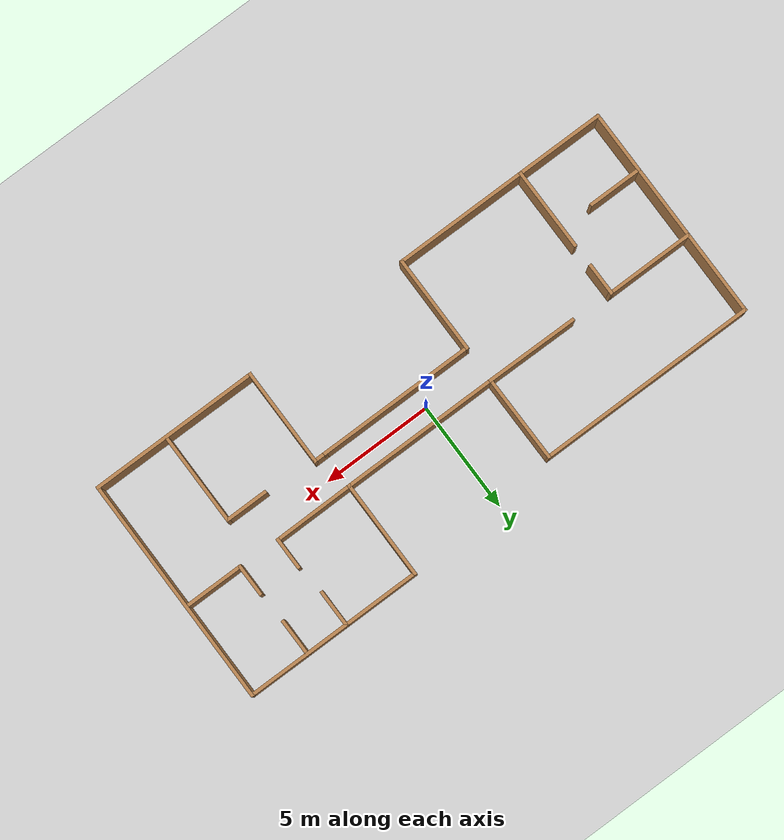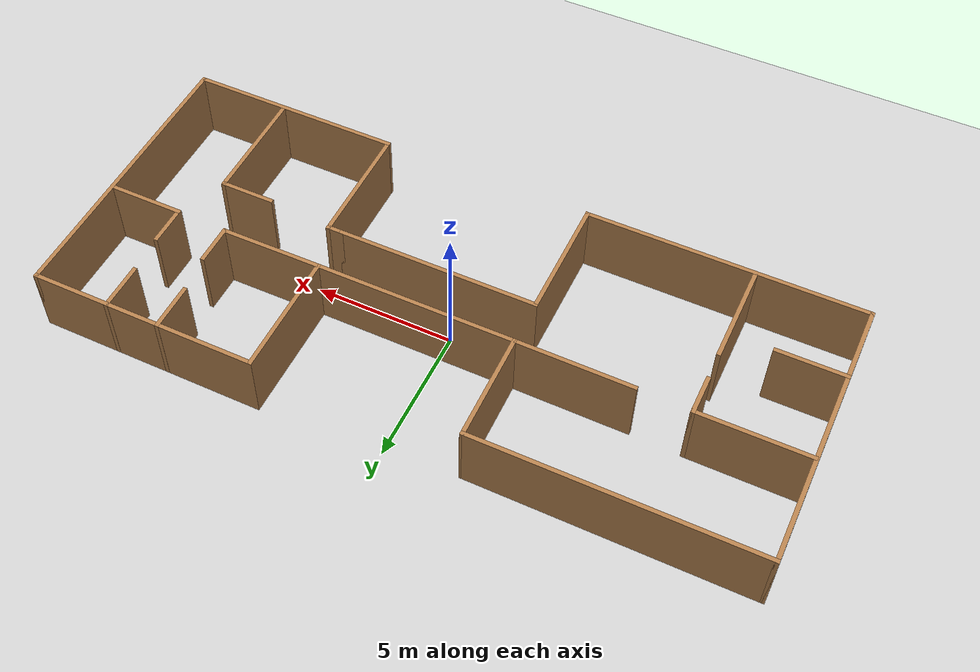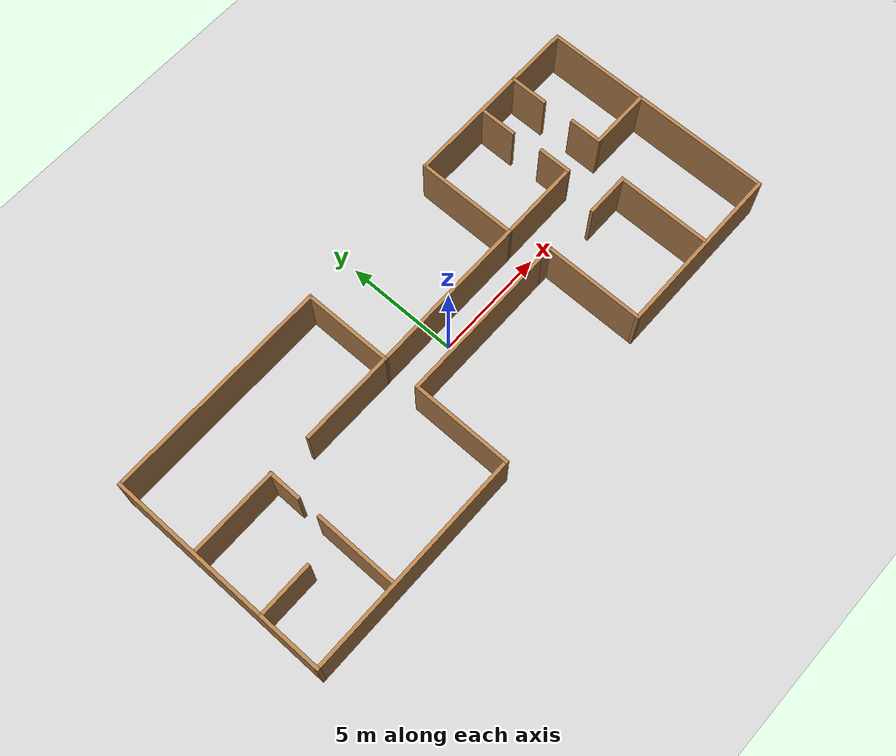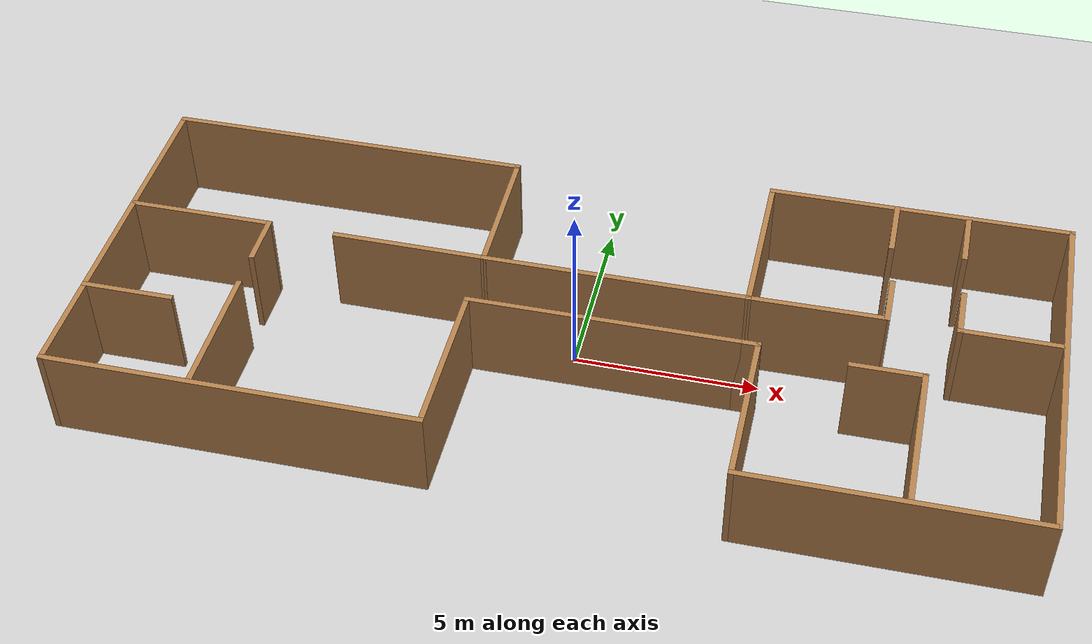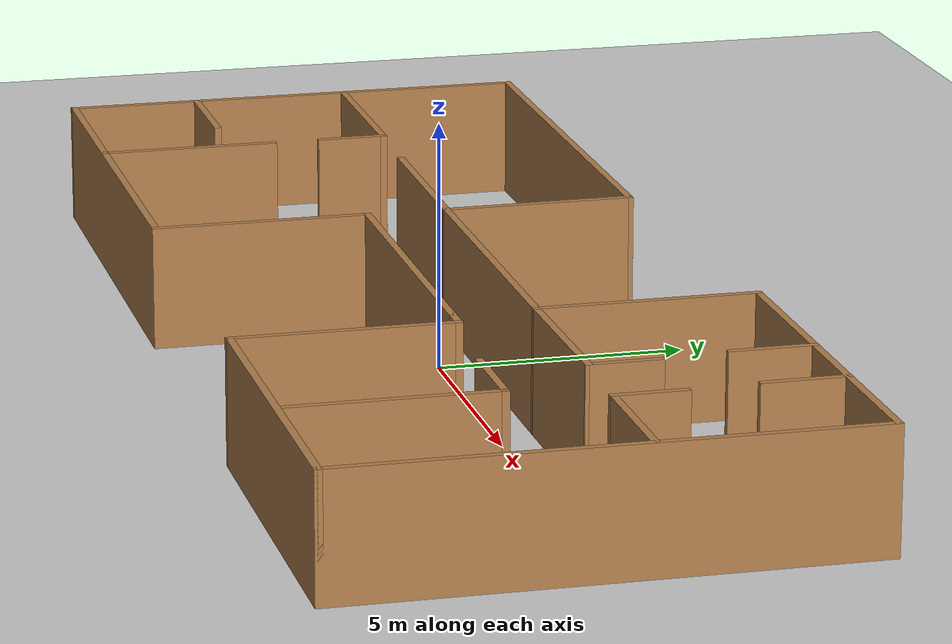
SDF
<sdf version="1.7">
 <world name="default">
  <light name="sun" type="directional">
   <pose>0 0 10 0 -0 0</pose>
   <diffuse>0.8 0.8 0.8 1</diffuse>
   <specular>0.2 0.2 0.2 1</specular>
   <attenuation>
    <range>1000</range>
    <constant>0.9</constant>
    <linear>0.01</linear>
    <quadratic>0.001</quadratic>
   </attenuation>
   <direction>-0.5 0.1 -0.9</direction>
   <spot><inner_angle>0</inner_angle><outer_angle>0</outer_angle><falloff>0</falloff></spot>
  </light>
  <model name="ground_plane">
   <static>1</static>
   <link name="link">
    <collision name="collision">
     <geometry><plane><normal>0 0 1</normal><size>100 100</size></plane></geometry>
     <surface>
      <contact><collide_bitmask>65535</collide_bitmask></contact>
      <friction><ode><mu>100</mu><mu2>50</mu2></ode></friction>
     </surface>
    </collision>
    <visual name="visual">
     <cast_shadows>0</cast_shadows>
     <geometry><plane><normal>0 0 1</normal><size>100 100</size></plane></geometry>
     <material>
      <script><uri>file://media/materials/scripts/gazebo.material</uri><name>Gazebo/Grey</name></script>
     </material>
    </visual>
   </link>
  </model>
  <gravity>0 0 -9.8</gravity>
  <magnetic_field>6e-06 2.3e-05 -4.2e-05</magnetic_field>
  <atmosphere type="adiabatic"/>
  <physics type="ode">
   <max_step_size>0.001</max_step_size>
   <real_time_factor>1</real_time_factor>
   <real_time_update_rate>1000</real_time_update_rate>
  </physics>
  <scene><ambient>0.4 0.4 0.4 1</ambient><background>0.7 0.7 0.7 1</background><shadows>1</shadows></scene>
  <spherical_coordinates>
   <surface_model>EARTH_WGS84</surface_model>
   <latitude_deg>0</latitude_deg>
   <longitude_deg>0</longitude_deg>
   <elevation>0</elevation>
   <heading_deg>0</heading_deg>
  </spherical_coordinates>
  <model name="turtlebot3_project_house">
   <link name="Wall_0">
    <collision name="Wall_0_Collision">
     <geometry><box><size>10.023 0.15 2.5</size></box></geometry>
     <pose>0 0 1.25 0 -0 0</pose>
    </collision>
    <visual name="Wall_0_Visual">
     <pose>0 0 1.25 0 -0 0</pose>
     <geometry><box><size>10.023 0.15 2.5</size></box></geometry>
     <material>
      <script><uri>file://media/materials/scripts/gazebo.material</uri><name>Gazebo/Wood</name></script>
      <ambient>1 1 1 1</ambient>
     </material>
     <meta><layer>0</layer></meta>
    </visual>
    <pose>-7.59992 -5.176 0 0 -0 3.14159</pose>
   </link>
   <link name="Wall_10">
    <collision name="Wall_10_Collision">
     <geometry><box><size>7.22732 0.15 2.5</size></box></geometry>
     <pose>0 0 1.25 0 -0 0</pose>
    </collision>
    <visual name="Wall_10_Visual">
     <pose>0 0 1.25 0 -0 0</pose>
     <geometry><box><size>7.22732 0.15 2.5</size></box></geometry>
     <material>
      <script><uri>file://media/materials/scripts/gazebo.material</uri><name>Gazebo/Wood</name></script>
      <ambient>1 1 1 1</ambient>
     </material>
     <meta><layer>0</layer></meta>
    </visual>
    <pose>0.89808 0.801 0 0 -0 0</pose>
   </link>
   <link name="Wall_11">
    <collision name="Wall_11_Collision">
     <geometry><box><size>4.52293 0.15 2.5</size></box></geometry>
     <pose>0 0 1.25 0 -0 0</pose>
    </collision>
    <visual name="Wall_11_Visual">
     <pose>0 0 1.25 0 -0 0</pose>
     <geometry><box><size>4.52293 0.15 2.5</size></box></geometry>
     <material>
      <script><uri>file://media/materials/scripts/gazebo.material</uri><name>Gazebo/Wood</name></script>
      <ambient>1 1 1 1</ambient>
     </material>
     <meta><layer>0</layer></meta>
    </visual>
    <pose>4.43658 2.9875 0 0 -0 1.5708</pose>
   </link>
   <link name="Wall_12">
    <collision name="Wall_12_Collision">
     <geometry><box><size>8.25 0.15 2.5</size></box></geometry>
     <pose>0 0 1.25 0 -0 0</pose>
    </collision>
    <visual name="Wall_12_Visual">
     <pose>0 0 1.25 0 -0 0</pose>
     <geometry><box><size>8.25 0.15 2.5</size></box></geometry>
     <material>
      <script><uri>file://media/materials/scripts/gazebo.material</uri><name>Gazebo/Wood</name></script>
      <ambient>1 1 1 1</ambient>
     </material>
     <meta><layer>0</layer></meta>
    </visual>
    <pose>8.48658 5.174 0 0 -0 0</pose>
   </link>
   <link name="Wall_13">
    <collision name="Wall_13_Collision">
     <geometry><box><size>10.5 0.15 2.5</size></box></geometry>
     <pose>0 0 1.25 0 -0 0</pose>
    </collision>
    <visual name="Wall_13_Visual">
     <pose>0 0 1.25 0 -0 0</pose>
     <geometry><box><size>10.5 0.15 2.5</size></box></geometry>
     <material>
      <script><uri>file://media/materials/scripts/gazebo.material</uri><name>Gazebo/Wood</name></script>
      <ambient>1 1 1 1</ambient>
     </material>
     <meta><layer>0</layer></meta>
    </visual>
    <pose>12.5366 -0.001 0 0 -0 -1.5708</pose>
   </link>
   <link name="Wall_14">
    <collision name="Wall_14_Collision">
     <geometry><box><size>7.75 0.15 2.5</size></box></geometry>
     <pose>0 0 1.25 0 -0 0</pose>
    </collision>
    <visual name="Wall_14_Visual">
     <pose>0 0 1.25 0 -0 0</pose>
     <geometry><box><size>7.75 0.15 2.5</size></box></geometry>
     <material>
      <script><uri>file://media/materials/scripts/gazebo.material</uri><name>Gazebo/Wood</name></script>
      <ambient>1 1 1 1</ambient>
     </material>
     <meta><layer>0</layer></meta>
    </visual>
    <pose>8.73658 -5.176 0 0 -0 3.14159</pose>
   </link>
   <link name="Wall_15">
    <collision name="Wall_15_Collision">
     <geometry><box><size>4.5 0.15 2.5</size></box></geometry>
     <pose>0 0 1.25 0 -0 0</pose>
    </collision>
    <visual name="Wall_15_Visual">
     <pose>0 0 1.25 0 -0 0</pose>
     <geometry><box><size>4.5 0.15 2.5</size></box></geometry>
     <material>
      <script><uri>file://media/materials/scripts/gazebo.material</uri><name>Gazebo/Wood</name></script>
      <ambient>1 1 1 1</ambient>
     </material>
     <meta><layer>0</layer></meta>
    </visual>
    <pose>4.93658 -3.001 0 0 -0 1.5708</pose>
   </link>
   <link name="Wall_16">
    <collision name="Wall_16_Collision">
     <geometry><box><size>0.65 0.15 2.5</size></box></geometry>
     <pose>0 0 1.25 0 -0 0</pose>
    </collision>
    <visual name="Wall_16_Visual">
     <pose>0 0 1.25 0 -0 0</pose>
     <geometry><box><size>0.65 0.15 2.5</size></box></geometry>
     <material>
      <script><uri>file://media/materials/scripts/gazebo.material</uri><name>Gazebo/Wood</name></script>
      <ambient>1 1 1 1</ambient>
     </material>
     <meta><layer>0</layer></meta>
    </visual>
    <pose>4.68658 -0.826 0 0 -0 3.14159</pose>
   </link>
   <link name="Wall_18">
    <collision name="Wall_18_Collision">
     <geometry><box><size>4.25 0.15 2.5</size></box></geometry>
     <pose>0 0 1.25 0 -0 0</pose>
    </collision>
    <visual name="Wall_18_Visual">
     <pose>0 0 1.25 0 -0 0</pose>
     <geometry><box><size>4.25 0.15 2.5</size></box></geometry>
     <material>
      <script><uri>file://media/materials/scripts/gazebo.material</uri><name>Gazebo/Wood</name></script>
      <ambient>1 1 1 1</ambient>
     </material>
     <meta><layer>0</layer></meta>
    </visual>
    <pose>-4.69042 0.8125 0 0 -0 3.13598</pose>
   </link>
   <link name="Wall_2">
    <collision name="Wall_2_Collision">
     <geometry><box><size>9.977 0.15 2.5</size></box></geometry>
     <pose>0 0 1.25 0 -0 0</pose>
    </collision>
    <visual name="Wall_2_Visual">
     <pose>0 0 1.25 0 -0 0</pose>
     <geometry><box><size>9.977 0.15 2.5</size></box></geometry>
     <material>
      <script><uri>file://media/materials/scripts/gazebo.material</uri><name>Gazebo/Wood</name></script>
      <ambient>1 1 1 1</ambient>
     </material>
     <meta><layer>0</layer></meta>
    </visual>
    <pose>-12.5364 -0.2625 0 0 -0 1.5708</pose>
   </link>
   <link name="Wall_20">
    <collision name="Wall_20_Collision">
     <geometry><box><size>4 0.15 2.5</size></box></geometry>
     <pose>0 0 1.25 0 -0 0</pose>
    </collision>
    <visual name="Wall_20_Visual">
     <pose>0 0 1.25 0 -0 0</pose>
     <geometry><box><size>4 0.15 2.5</size></box></geometry>
     <material>
      <script><uri>file://media/materials/scripts/gazebo.material</uri><name>Gazebo/Wood</name></script>
      <ambient>1 1 1 1</ambient>
     </material>
     <meta><layer>0</layer></meta>
    </visual>
    <pose>-10.5694 0.872 0 0 -0 0</pose>
   </link>
   <link name="Wall_21">
    <collision name="Wall_21_Collision">
     <geometry><box><size>1.5 0.15 2.5</size></box></geometry>
     <pose>0 0 1.25 0 -0 0</pose>
    </collision>
    <visual name="Wall_21_Visual">
     <pose>0 0 1.25 0 -0 0</pose>
     <geometry><box><size>1.5 0.15 2.5</size></box></geometry>
     <material>
      <script><uri>file://media/materials/scripts/gazebo.material</uri><name>Gazebo/Wood</name></script>
      <ambient>1 1 1 1</ambient>
     </material>
     <meta><layer>0</layer></meta>
    </visual>
    <pose>-8.64442 0.197 0 0 -0 -1.5708</pose>
   </link>
   <link name="Wall_23">
    <collision name="Wall_23_Collision">
     <geometry><box><size>3.75 0.15 2.5</size></box></geometry>
     <pose>0 0 1.25 0 -0 0</pose>
    </collision>
    <visual name="Wall_23_Visual">
     <pose>0 0 1.25 0 -0 0</pose>
     <geometry><box><size>3.75 0.15 2.5</size></box></geometry>
     <material>
      <script><uri>file://media/materials/scripts/gazebo.material</uri><name>Gazebo/Wood</name></script>
      <ambient>1 1 1 1</ambient>
     </material>
     <meta><layer>0</layer></meta>
    </visual>
    <pose>-8.63242 -3.342 0 0 -0 -1.5708</pose>
   </link>
   <link name="Wall_25">
    <collision name="Wall_25_Collision">
     <geometry><box><size>2.5 0.15 2.5</size></box></geometry>
     <pose>0 0 1.25 0 -0 0</pose>
    </collision>
    <visual name="Wall_25_Visual">
     <pose>0 0 1.25 0 -0 0</pose>
     <geometry><box><size>2.5 0.15 2.5</size></box></geometry>
     <material>
      <script><uri>file://media/materials/scripts/gazebo.material</uri><name>Gazebo/Wood</name></script>
      <ambient>1 1 1 1</ambient>
     </material>
     <meta><layer>0</layer></meta>
    </visual>
    <pose>-11.3594 -2.447 0 0 -0 0</pose>
   </link>
   <link name="Wall_27">
    <collision name="Wall_27_Collision">
     <geometry><box><size>3.72707 0.15 2.5</size></box></geometry>
     <pose>0 0 1.25 0 -0 0</pose>
    </collision>
    <visual name="Wall_27_Visual">
     <pose>0 0 1.25 0 -0 0</pose>
     <geometry><box><size>3.72707 0.15 2.5</size></box></geometry>
     <material>
      <script><uri>file://media/materials/scripts/gazebo.material</uri><name>Gazebo/Wood</name></script>
      <ambient>1 1 1 1</ambient>
     </material>
     <meta><layer>0</layer></meta>
    </visual>
    <pose>6.22508 0.8125 0 0 -0 0.00643</pose>
   </link>
   <link name="Wall_28">
    <collision name="Wall_28_Collision">
     <geometry><box><size>1.5 0.15 2.5</size></box></geometry>
     <pose>0 0 1.25 0 -0 0</pose>
    </collision>
    <visual name="Wall_28_Visual">
     <pose>0 0 1.25 0 -0 0</pose>
     <geometry><box><size>1.5 0.15 2.5</size></box></geometry>
     <material>
      <script><uri>file://media/materials/scripts/gazebo.material</uri><name>Gazebo/Wood</name></script>
      <ambient>1 1 1 1</ambient>
     </material>
     <meta><layer>0</layer></meta>
    </visual>
    <pose>8.01358 1.499 0 0 -0 1.5708</pose>
   </link>
   <link name="Wall_30">
    <collision name="Wall_30_Collision">
     <geometry><box><size>1.75 0.15 2.5</size></box></geometry>
     <pose>0 0 1.25 0 -0 0</pose>
    </collision>
    <visual name="Wall_30_Visual">
     <pose>0 0 1.25 0 -0 0</pose>
     <geometry><box><size>1.75 0.15 2.5</size></box></geometry>
     <material>
      <script><uri>file://media/materials/scripts/gazebo.material</uri><name>Gazebo/Wood</name></script>
      <ambient>1 1 1 1</ambient>
     </material>
     <meta><layer>0</layer></meta>
    </visual>
    <pose>7.86058 4.376 0 0 -0 -1.5708</pose>
   </link>
   <link name="Wall_32">
    <collision name="Wall_32_Collision">
     <geometry><box><size>2.75 0.15 2.5</size></box></geometry>
     <pose>0 0 1.25 0 -0 0</pose>
    </collision>
    <visual name="Wall_32_Visual">
     <pose>0 0 1.25 0 -0 0</pose>
     <geometry><box><size>2.75 0.15 2.5</size></box></geometry>
     <material>
      <script><uri>file://media/materials/scripts/gazebo.material</uri><name>Gazebo/Wood</name></script>
      <ambient>1 1 1 1</ambient>
     </material>
     <meta><layer>0</layer></meta>
    </visual>
    <pose>11.1666 0.771 0 0 -0 3.14159</pose>
   </link>
   <link name="Wall_33">
    <collision name="Wall_33_Collision">
     <geometry><box><size>1.5 0.15 2.5</size></box></geometry>
     <pose>0 0 1.25 0 -0 0</pose>
    </collision>
    <visual name="Wall_33_Visual">
     <pose>0 0 1.25 0 -0 0</pose>
     <geometry><box><size>1.5 0.15 2.5</size></box></geometry>
     <material>
      <script><uri>file://media/materials/scripts/gazebo.material</uri><name>Gazebo/Wood</name></script>
      <ambient>1 1 1 1</ambient>
     </material>
     <meta><layer>0</layer></meta>
    </visual>
    <pose>9.86658 1.446 0 0 -0 1.5708</pose>
   </link>
   <link name="Wall_35">
    <collision name="Wall_35_Collision">
     <geometry><box><size>1.75 0.15 2.5</size></box></geometry>
     <pose>0 0 1.25 0 -0 0</pose>
    </collision>
    <visual name="Wall_35_Visual">
     <pose>0 0 1.25 0 -0 0</pose>
     <geometry><box><size>1.75 0.15 2.5</size></box></geometry>
     <material>
      <script><uri>file://media/materials/scripts/gazebo.material</uri><name>Gazebo/Wood</name></script>
      <ambient>1 1 1 1</ambient>
     </material>
     <meta><layer>0</layer></meta>
    </visual>
    <pose>9.79158 4.376 0 0 -0 -1.5708</pose>
   </link>
   <link name="Wall_37">
    <collision name="Wall_37_Collision">
     <geometry><box><size>4.25 0.15 2.5</size></box></geometry>
     <pose>0 0 1.25 0 -0 0</pose>
    </collision>
    <visual name="Wall_37_Visual">
     <pose>0 0 1.25 0 -0 0</pose>
     <geometry><box><size>4.25 0.15 2.5</size></box></geometry>
     <material>
      <script><uri>file://media/materials/scripts/gazebo.material</uri><name>Gazebo/Wood</name></script>
      <ambient>1 1 1 1</ambient>
     </material>
     <meta><layer>0</layer></meta>
    </visual>
    <pose>9.14758 -3.072 0 0 -0 1.5708</pose>
   </link>
   <link name="Wall_39">
    <collision name="Wall_39_Collision">
     <geometry><box><size>2 0.15 2.5</size></box></geometry>
     <pose>0 0 1.25 0 -0 0</pose>
    </collision>
    <visual name="Wall_39_Visual">
     <pose>0 0 1.25 0 -0 0</pose>
     <geometry><box><size>2 0.15 2.5</size></box></geometry>
     <material>
      <script><uri>file://media/materials/scripts/gazebo.material</uri><name>Gazebo/Wood</name></script>
      <ambient>1 1 1 1</ambient>
     </material>
     <meta><layer>0</layer></meta>
    </visual>
    <pose>8.22258 -1.022 0 0 -0 3.14159</pose>
   </link>
   <link name="Wall_4">
    <collision name="Wall_4_Collision">
     <geometry><box><size>10.0233 0.15 2.5</size></box></geometry>
     <pose>0 0 1.25 0 -0 0</pose>
    </collision>
    <visual name="Wall_4_Visual">
     <pose>0 0 1.25 0 -0 0</pose>
     <geometry><box><size>10.0233 0.15 2.5</size></box></geometry>
     <material>
      <script><uri>file://media/materials/scripts/gazebo.material</uri><name>Gazebo/Wood</name></script>
      <ambient>1 1 1 1</ambient>
     </material>
     <meta><layer>0</layer></meta>
    </visual>
    <pose>-7.59992 4.651 0 0 -0 0</pose>
   </link>
   <link name="Wall_5">
    <collision name="Wall_5_Collision">
     <geometry><box><size>4.00007 0.15 2.5</size></box></geometry>
     <pose>0 0 1.25 0 -0 0</pose>
    </collision>
    <visual name="Wall_5_Visual">
     <pose>0 0 1.25 0 -0 0</pose>
     <geometry><box><size>4.00007 0.15 2.5</size></box></geometry>
     <material>
      <script><uri>file://media/materials/scripts/gazebo.material</uri><name>Gazebo/Wood</name></script>
      <ambient>1 1 1 1</ambient>
     </material>
     <meta><layer>0</layer></meta>
    </visual>
    <pose>-2.65192 2.726 0 0 -0 -1.56482</pose>
   </link>
   <link name="Wall_7">
    <collision name="Wall_7_Collision">
     <geometry><box><size>4.5 0.15 2.5</size></box></geometry>
     <pose>0 0 1.25 0 -0 0</pose>
    </collision>
    <visual name="Wall_7_Visual">
     <pose>0 0 1.25 0 -0 0</pose>
     <geometry><box><size>4.5 0.15 2.5</size></box></geometry>
     <material>
      <script><uri>file://media/materials/scripts/gazebo.material</uri><name>Gazebo/Wood</name></script>
      <ambient>1 1 1 1</ambient>
     </material>
     <meta><layer>0</layer></meta>
    </visual>
    <pose>-2.66342 -3.001 0 0 -0 1.5708</pose>
   </link>
   <link name="Wall_8">
    <collision name="Wall_8_Collision">
     <geometry><box><size>7.25 0.15 2.5</size></box></geometry>
     <pose>0 0 1.25 0 -0 0</pose>
    </collision>
    <visual name="Wall_8_Visual">
     <pose>0 0 1.25 0 -0 0</pose>
     <geometry><box><size>7.25 0.15 2.5</size></box></geometry>
     <material>
      <script><uri>file://media/materials/scripts/gazebo.material</uri><name>Gazebo/Wood</name></script>
      <ambient>1 1 1 1</ambient>
     </material>
     <meta><layer>0</layer></meta>
    </visual>
    <pose>0.88658 -0.826 0 0 -0 0</pose>
   </link>
   <static>1</static>
  </model>
 </world>
</sdf>
